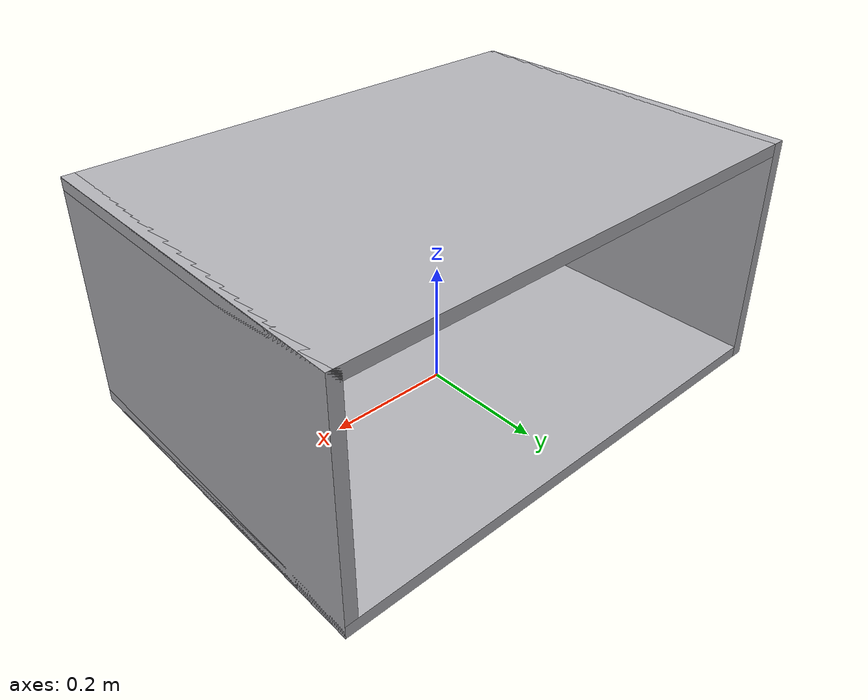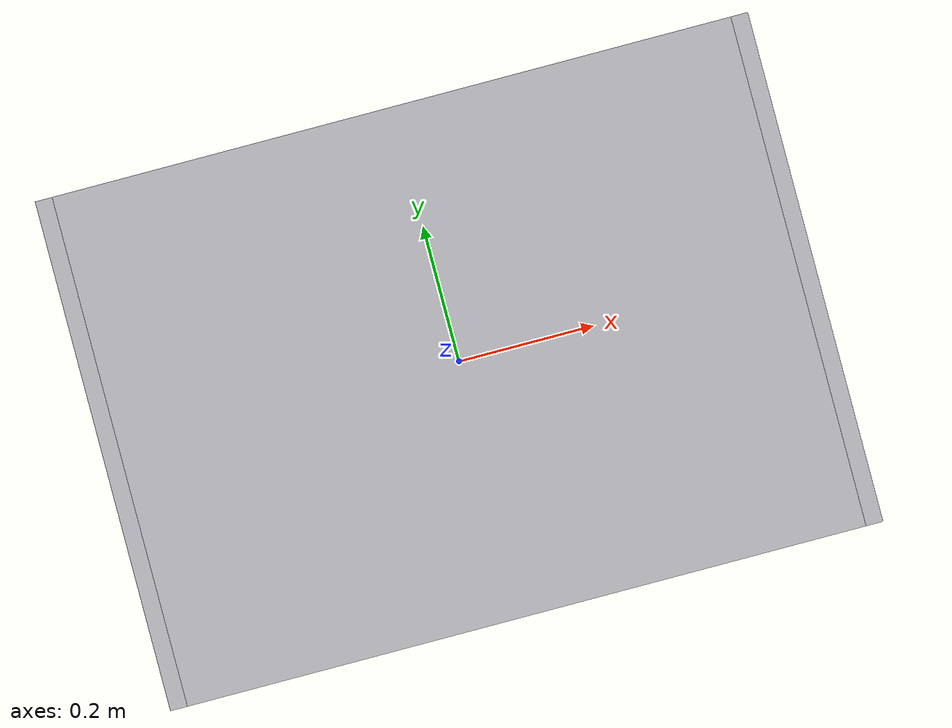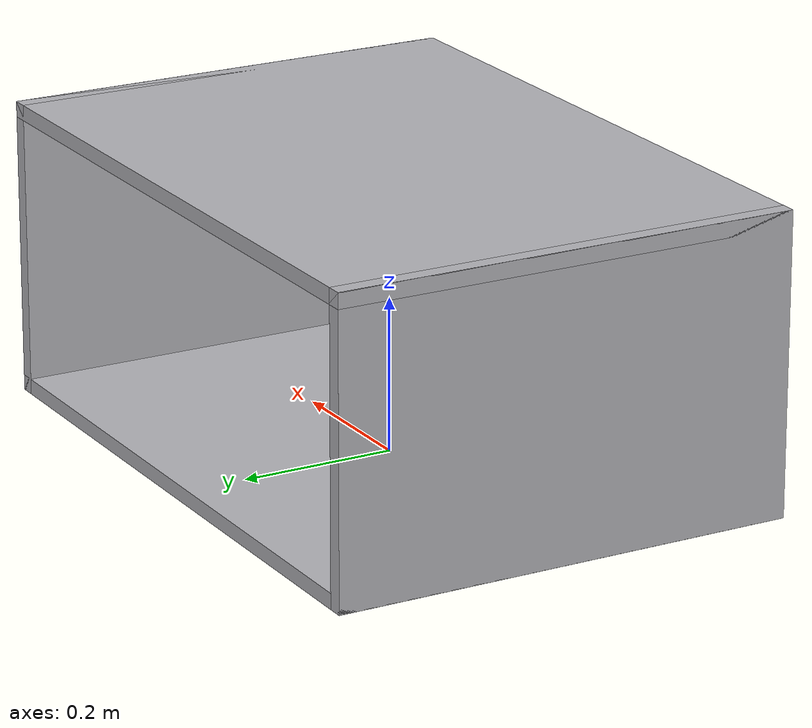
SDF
<?xml version='1.0' encoding='utf-8'?>
<sdf version="1.6">
  <model name="Fridge_Cabinet_33x15">
    <link name="Wall_17">
    <pose frame="">0 0 0.01 0 0 0</pose>
	<inertial>
	  <mass>4.8627</mass>
	   <inertia>
	     <ixx>0.1460</ixx>
	     <iyy>0.4318</iyy>
	     <izz>0.2861</izz>
    	     <ixy>0</ixy>
	     <ixz>0</ixz>
	     <iyz>0</iyz>
	   </inertia>
	</inertial>
      <collision name="Wall_17_Collision">
        <geometry>
          <box>
            <size>0.84 0.6 0.02 </size>
          </box>
        </geometry>
       </collision>
      <visual name="Wall_17_Visual">
       <geometry>
          <box>
            <size>0.84 0.6 0.02 </size>
          </box>
        </geometry>
        <material>
          <ambient>1 0.764706 0.305882 1</ambient>
        <diffuse>0.70 0.70 0.72 1</diffuse><specular>0.30 0.30 0.30 1</specular></material>
      </visual>
     </link>
     <link name="Wall_19">
	<pose frame="">-0.41 0 0.192 0 0 0</pose>
	<inertial>
	  <mass>2.2230</mass>
	   <inertia>
	     <ixx>0.0668</ixx>
	     <iyy>0.0940</iyy>
	     <izz>0.0274</izz>
    	     <ixy>0</ixy>
	     <ixz>0</ixz>
	     <iyz>0</iyz>
	   </inertia>
	</inertial>
      <collision name="Wall_19_Collision">
        <geometry>
          <box>
            <size> 0.02 0.6 0.384</size>
          </box>
        </geometry>

      </collision>
      <visual name="Wall_19_Visual">

        <geometry>
          <box>
            <size>0.02 0.6 0.384</size>
          </box>
        </geometry>
        <material>
          <ambient>1 0.764706 0.305882 1</ambient>
        <diffuse>0.70 0.70 0.72 1</diffuse><specular>0.30 0.30 0.30 1</specular></material>
      </visual>

    </link>

    <link name="Wall_21">
 	<pose frame="">0.41 0 0.192 0 0 0</pose>
	<inertial>
	  <mass>2.2230</mass>
	   <inertia>
	     <ixx>0.0668</ixx>
	     <iyy>0.0940</iyy>
	     <izz>0.0274</izz>
    	     <ixy>0</ixy>
	     <ixz>0</ixz>
	     <iyz>0</iyz>
	   </inertia>
	</inertial>
      <collision name="Wall_21_Collision">
        <geometry>
          <box>
            <size> 0.02 0.6 0.384</size>
          </box>
        </geometry>

      </collision>
      <visual name="Wall_21_Visual">

        <geometry>
          <box>
            <size>0.02 0.6 0.384</size>
          </box>
        </geometry>
        <material>
          <ambient>1 0.764706 0.305882 1</ambient>
        <diffuse>0.70 0.70 0.72 1</diffuse><specular>0.30 0.30 0.30 1</specular></material>
      </visual>
      </link>

    <link name="Wall_23">
 	<pose frame="">0 0 0.374 0 0 0</pose>
	<inertial>
	  <mass>4.8627</mass>
	   <inertia>
	     <ixx>0.1460</ixx>
	     <iyy>0.4318</iyy>
	     <izz>0.2861</izz>
    	     <ixy>0</ixy>
	     <ixz>0</ixz>
	     <iyz>0</iyz>
	   </inertia>
	</inertial>
      <collision name="Wall_23_Collision">
        <geometry>
          <box>
            <size>0.84 0.6 0.02 </size>
          </box>
        </geometry>

      </collision>
      <visual name="Wall_23_Visual">
         <geometry>
          <box>
            <size>0.84 0.6 0.02</size>
          </box>
        </geometry>
        <material>
          <ambient>1 0.764706 0.305882 1</ambient>
        <diffuse>0.70 0.70 0.72 1</diffuse><specular>0.30 0.30 0.30 1</specular></material>
      </visual>
     </link>

     <link name="Wall_25">
	 <pose frame="">0 -0.290 0.190 0 0 0</pose>
	<inertial>
	  <mass>3.0651</mass>
	   <inertia>
	     <ixx>0.0370</ixx>
	     <iyy>0.1786</iyy>
	     <izz>0.2154</izz>
    	     <ixy>0</ixy>
	     <ixz>0</ixz>
	     <iyz>0</iyz>
	   </inertia>
	</inertial>
      <collision name="Wall_25_Collision">
        <geometry>
          <box>
            <size>0.836 0.02 0.38 </size>
          </box>
        </geometry>
       </collision>
      <visual name="Wall_25_Visual">
        <geometry>
          <box>
            <size>0.836 0.02 0.38</size>
          </box>
        </geometry>
        <material>
          <ambient>1 0.764706 0.305882 1</ambient>
        <diffuse>0.70 0.70 0.72 1</diffuse><specular>0.30 0.30 0.30 1</specular></material>
      </visual>
     </link>
     <static>1</static>
  </model>
</sdf>
